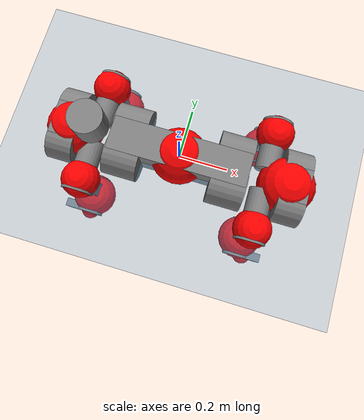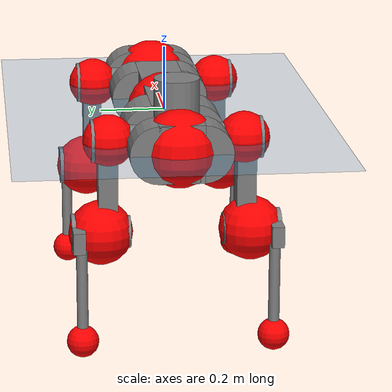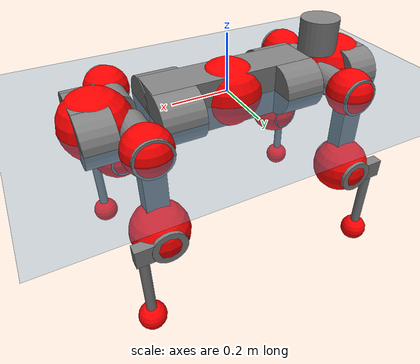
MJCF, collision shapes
<mujoco model="anymal_c">
  <compiler angle="radian" assetdir="assets" balanceinertia="true" inertiafromgeom="false"/>

  <option timestep="0.005" density="1.2" viscosity="2e-05"/>

  <size nkey="1"/>

  <visual>
    <quality shadowsize="8192"/>
    <map shadowclip="0.5"/>
  </visual>

  <default>
    <default class="/">
      <material specular="0" shininess="0.25"/>
      <geom contype="0" conaffinity="0" group="1" solref="-1000 -80"/>
      <site size="0.01 0.005 0.005" group="5"/>
      <general forcelimited="true" forcerange="-80 80" biastype="affine" gainprm="80" biasprm="0 -80 -2"/>
      <default class="anymal_c">
        <joint armature="0.01" damping="0.01" frictionloss="0.1"/>
        <default class="visual">
          <geom type="mesh" group="2"/>
          <default class="visual_zflip"/>
        </default>
        <default class="collision">
          <geom type="cylinder" group="3"/>
          <default class="foot">
            <geom size="0.03 0 0" type="sphere" condim="6" priority="1" friction="0.8 0.02 0.01" solimp="0.015 1 0.03"/>
          </default>
        </default>
      </default>
      <default class="reward_collision_sphere">
        <geom group="5" rgba="1 0 0 1"/>
      </default>
    </default>
  </default>

  <asset>
    <texture type="skybox" colorspace="auto" name="//unnamed_texture_0" builtin="gradient" rgb1="0.95 0.95 0.95" rgb2="0.95 0.95 0.95" width="100" height="600"/>
    <texture type="2d" colorspace="auto" name="texplane" builtin="checker" rgb1="0.345 0.575 0.748" rgb2="0.345 0.575 0.748" markrgb="1 1 1" width="512" height="512"/>
    <texture type="2d" colorspace="linear" name="base" file="base.png"/>
    <texture type="2d" colorspace="linear" name="top_shell" file="top_shell.png"/>
    <texture type="2d" colorspace="linear" name="bottom_shell" file="bottom_shell.png"/>
    <texture type="2d" colorspace="linear" name="remote" file="remote.png"/>
    <texture type="2d" colorspace="linear" name="hatch" file="hatch.png"/>
    <texture type="2d" colorspace="linear" name="handle" file="handle.png"/>
    <texture type="2d" colorspace="linear" name="face" file="face.png"/>
    <texture type="2d" colorspace="linear" name="battery" file="battery.png"/>
    <texture type="2d" colorspace="linear" name="lidar_cage" file="lidar_cage.png"/>
    <texture type="2d" colorspace="linear" name="depth_camera" file="depth_camera.png"/>
    <texture type="2d" colorspace="linear" name="wide_angle_camera" file="wide_angle_camera.png"/>
    <texture type="2d" colorspace="linear" name="lidar" file="lidar.png"/>
    <texture type="2d" colorspace="linear" name="drive" file="drive.png"/>
    <texture type="2d" colorspace="linear" name="hip_l" file="hip_l.png"/>
    <texture type="2d" colorspace="linear" name="shank_l" file="shank_l.png"/>
    <texture type="2d" colorspace="linear" name="foot" file="foot.png"/>
    <texture type="2d" colorspace="linear" name="thigh" file="thigh.png"/>
    <texture type="2d" colorspace="linear" name="shank_r" file="shank_r.png"/>
    <texture type="2d" colorspace="linear" name="hip_r" file="hip_r.png"/>
    <material name="MatPlane" class="/" texture="texplane" texuniform="true" texrepeat="2 2" specular="0.9" shininess="0.5"/>
    <material name="black_plastic" class="/" rgba="0.007 0.007 0.007 1"/>
    <material name="green" class="/" rgba="0.052 0.178 0.033 1"/>
    <material name="red" class="/" rgba="0.178 0.006 0.005 1"/>
    <material name="yellow" class="/" rgba="0.178 0.119 0.006 1"/>
    <material name="lwl" class="/" rgba="0.8 0.8 0.8 1"/>
    <material name="base" class="/" texture="base"/>
    <material name="top_shell" class="/" texture="top_shell"/>
    <material name="bottom_shell" class="/" texture="bottom_shell"/>
    <material name="hip_l" class="/" texture="hip_l"/>
    <material name="thigh" class="/" texture="thigh"/>
    <material name="shank_l" class="/" texture="shank_l"/>
    <material name="foot" class="/" texture="foot"/>
    <material name="hip_r" class="/" texture="hip_r"/>
    <material name="shank" class="/" texture="shank_r"/>
    <material name="hatch" class="/" texture="hatch"/>
    <material name="remote" class="/" texture="remote"/>
    <material name="handle" class="/" texture="handle"/>
    <material name="face" class="/" texture="face"/>
    <material name="depth_camera" class="/" texture="depth_camera"/>
    <material name="wide_angle_camera" class="/" texture="wide_angle_camera"/>
    <material name="battery" class="/" texture="battery"/>
    <material name="lidar_cage" class="/" texture="lidar_cage"/>
    <material name="lidar" class="/" texture="lidar"/>
    <material name="drive" class="/" texture="drive"/>
    <mesh name="base_0" class="/" file="base_0.obj"/>
    <mesh name="base_1" class="/" file="base_1.obj"/>
    <mesh name="base_2" class="/" file="base_2.obj"/>
    <mesh name="base_3" class="/" file="base_3.obj"/>
    <mesh name="base_4" class="/" file="base_4.obj"/>
    <mesh name="base_5" class="/" file="base_5.obj"/>
    <mesh name="top_shell" class="/" file="top_shell.obj"/>
    <mesh name="bottom_shell" class="/" file="bottom_shell.obj"/>
    <mesh name="remote" class="/" file="remote.obj"/>
    <mesh name="handle" class="/" file="handle.obj"/>
    <mesh name="face" class="/" file="face.obj"/>
    <mesh name="wide_angle_camera" class="/" file="wide_angle_camera.obj"/>
    <mesh name="depth_camera" class="/" file="depth_camera.obj"/>
    <mesh name="battery" class="/" file="battery.obj"/>
    <mesh name="lidar_cage" class="/" file="lidar_cage.obj"/>
    <mesh name="lidar" class="/" file="lidar.obj"/>
    <mesh name="drive" class="/" file="drive.obj"/>
    <mesh name="hip_l" class="/" file="hip_l.obj"/>
    <mesh name="thigh" class="/" file="thigh.obj"/>
    <mesh name="shank_l" class="/" file="shank_l.obj"/>
    <mesh name="foot" class="/" file="foot.obj"/>
    <mesh name="hip_r" class="/" file="hip_r.obj"/>
    <mesh name="hatch" class="/" file="hatch.obj"/>
    <mesh name="shank_r" class="/" file="shank_r.obj"/>
  </asset>

  <worldbody>
    <geom name="floor" class="/" size="100 100 0.125" type="plane" group="0" material="MatPlane"/>
    <light name="toplight_shadow" class="/" pos="0 0 5" dir="0.0990148 0.0990148 -0.990148" type="directional" ambient="0.04 0.04 0.04" diffuse="0.55 0.55 0.55" specular="0.12 0.12 0.12"/>
    <light name="toplight_fill" class="/" pos="0 0 5" dir="0.0990148 0.0990148 -0.990148" type="directional" castshadow="false" ambient="0.04 0.04 0.04" diffuse="0.3 0.3 0.3" specular="0.08 0.08 0.08"/>
    <body name="trunk" childclass="anymal_c" pos="7.13272e-05 0.000316504 -7.88485e-05" quat="1 6.51026e-06 -2.06191e-05 8.41074e-06">
      <inertial pos="0.00252435 -0.000112243 0.0486197" quat="0.494963 0.498244 0.504828 0.501909" mass="17.6148" diaginertia="0.598007 0.431032 0.213399"/>
      <joint name="//unnamed_joint_0" type="free" armature="0" damping="0" frictionloss="0"/>
      <geom name="//unnamed_geom_1" class="visual" material="green" mesh="base_0"/>
      <geom name="//unnamed_geom_2" class="visual" material="yellow" mesh="base_1"/>
      <geom name="//unnamed_geom_3" class="visual" material="red" mesh="base_2"/>
      <geom name="//unnamed_geom_4" class="visual" material="black_plastic" mesh="base_3"/>
      <geom name="//unnamed_geom_5" class="visual" material="lwl" mesh="base_4"/>
      <geom name="//unnamed_geom_6" class="visual" material="base" mesh="base_5"/>
      <geom name="trunk_1" class="collision" size="0.281509 0.0679505 0.0873649" type="box"/>
      <geom name="trunk_2" class="collision" size="0.0873649 0.0703773" pos="0.2145 0.0649506 0" quat="0.707107 0 0.707107 0"/>
      <geom name="trunk_3" class="collision" size="0.0873649 0.0703773" pos="-0.2145 0.0649506 0" quat="0.707107 0 0.707107 0"/>
      <geom name="trunk_4" class="collision" size="0.0873649 0.0703773" pos="0.2145 -0.0649506 0" quat="0.707107 0 0.707107 0"/>
      <geom name="trunk_5" class="collision" size="0.0873649 0.0703773" pos="-0.2145 -0.0649506 0" quat="0.707107 0 0.707107 0"/>
      <geom name="//unnamed_geom_12" class="visual" material="top_shell" mesh="top_shell"/>
      <geom name="//unnamed_geom_13" class="visual" material="bottom_shell" mesh="bottom_shell"/>
      <geom name="//unnamed_geom_14" class="visual" material="remote" mesh="remote"/>
      <geom name="//unnamed_geom_15" class="visual" material="handle" mesh="handle"/>
      <geom name="//unnamed_geom_16" class="visual" pos="0.408782 0 0" quat="1 0 0 0" material="face" mesh="face"/>
      <geom name="trunk_6" class="collision" size="0.0533897 0.0679505 0.0873649" pos="0.463023 0 0" type="box"/>
      <geom name="//unnamed_geom_18" class="collision" size="0.0873649 0.0533897" pos="0.463023 0.0649506 0" quat="0.707107 0 0.707107 0"/>
      <geom name="//unnamed_geom_19" class="collision" size="0.0873649 0.0533897" pos="0.463023 -0.0649506 0" quat="0.707107 0 0.707107 0"/>
      <geom name="//unnamed_geom_20" class="visual" pos="0.455282 0 -0.0292346" quat="0.965926 0 0.258819 0" material="depth_camera" mesh="depth_camera"/>
      <geom name="//unnamed_geom_21" class="visual" pos="0.505923 0 0.0149414" material="wide_angle_camera" mesh="wide_angle_camera"/>
      <geom name="//unnamed_geom_22" class="visual_zflip" pos="-0.408782 0 0" quat="0 0 0 1" material="face" mesh="face"/>
      <geom name="trunk_7" class="collision" size="0.0533897 0.0679505 0.0873649" pos="-0.463023 0 0" quat="0 0 0 1" type="box"/>
      <geom name="//unnamed_geom_24" class="collision" size="0.0873649 0.0533897" pos="-0.463023 -0.0649506 0" quat="0 -0.707107 0 0.707107"/>
      <geom name="//unnamed_geom_25" class="collision" size="0.0873649 0.0533897" pos="-0.463023 0.0649506 0" quat="0 -0.707107 0 0.707107"/>
      <geom name="//unnamed_geom_26" class="visual" pos="-0.455282 0 -0.0292346" quat="0 -0.258819 0 0.965926" material="depth_camera" mesh="depth_camera"/>
      <geom name="//unnamed_geom_27" class="visual_zflip" pos="-0.505923 0 0.0149414" quat="0 0 0 1" material="wide_angle_camera" mesh="wide_angle_camera"/>
      <geom name="//unnamed_geom_28" class="visual" material="battery" mesh="battery"/>
      <geom name="//unnamed_geom_29" class="visual" pos="0 0.0701796 0.0289042" quat="0.683013 -0.183013 0.183013 0.683013" material="depth_camera" mesh="depth_camera"/>
      <geom name="//unnamed_geom_30" class="visual" pos="0 -0.0701796 0.0289042" quat="0.683013 0.183013 0.183013 -0.683013" material="depth_camera" mesh="depth_camera"/>
      <geom name="//unnamed_geom_31" class="visual" pos="-0.358979 0 0.0733598" quat="1 0 0 0" material="lidar_cage" mesh="lidar_cage"/>
      <geom name="trunk_8" class="collision" size="0.0679505 0.0582433" pos="-0.358979 0 0.133245"/>
      <geom name="//unnamed_geom_33" class="visual" pos="-0.358979 -2.29199e-05 0.141929" quat="0.707107 0 0 -0.707107" material="lidar" mesh="lidar"/>
      <geom name="//unnamed_geom_34" class="visual" pos="0.295763 0.096523 -1.21141e-09" quat="0.258819 0.965926 0 0" material="drive" mesh="drive"/>
      <geom name="//unnamed_geom_35" class="visual" pos="0.295763 -0.096523 1.21141e-09" quat="0.258819 -0.965926 0 0" material="drive" mesh="drive"/>
      <geom name="//unnamed_geom_36" class="visual" pos="-0.295763 0.096523 1.21141e-09" quat="0 0 0.965926 -0.258819" material="drive" mesh="drive"/>
      <geom name="//unnamed_geom_37" class="visual" pos="-0.295763 -0.096523 -1.21141e-09" quat="0 0 -0.965926 -0.258819" material="drive" mesh="drive"/>
      <geom name="//unnamed_geom_38" class="visual" pos="0.1144 0 0.0728607" quat="1 0 0 0" material="hatch" mesh="hatch"/>
      <geom name="//unnamed_geom_39" class="reward_collision_sphere" size="0.116487"/>
      <geom name="//unnamed_geom_40" class="reward_collision_sphere" size="0.116487" pos="0.443792 0 0"/>
      <geom name="//unnamed_geom_41" class="reward_collision_sphere" size="0.116487" pos="-0.443792 0 0"/>
      <site name="imu" pos="0.243183 0.00302908 0.047804" size="0.00970721"/>
      <camera name="track" pos="0 -1.85573 0" quat="0.707107 0.707107 0 0" mode="trackcom"/>
      <camera name="ego_camera" pos="0.443792 0 -0.0399237" quat="-0.5 -0.5 0.5 0.5"/>
      <body name="LF_HIP" pos="0.295388 0.098291 0.000333502" quat="0.258803 0.96593 -3.3372e-05 5.37768e-05">
        <inertial pos="0.0555612 -0.0138033 -0.00901569" quat="-0.127719 0.709871 -0.134956 0.679381" mass="2.55673" diaginertia="0.00545955 0.00341907 0.00328082"/>
        <joint name="LF_HAA" pos="0 0 0" axis="0.999998 -0.00122902 0.00162427" range="-0.689827 0.471845" armature="0.00990465" damping="0.00867162" frictionloss="0.0933479"/>
        <geom name="//unnamed_geom_42" class="visual" pos="0 -7.12619e-05 1.17047e-05" quat="0.258819 -0.965926 0 0" material="hip_l" mesh="hip_l"/>
        <geom name="//unnamed_geom_43" class="visual" pos="0.0590737 -0.0708372 -0.0414173" quat="0.183013 -0.683013 0.683013 0.183013" material="drive" mesh="drive"/>
        <geom name="//unnamed_geom_44" class="collision" size="0.0485361 0.0679505" pos="0.0590737 -0.0110971 -0.00689183" quat="-0.353553 -0.612372 0.612372 -0.353553"/>
        <body name="LF_THIGH" pos="0.0592648 -0.0665724 -0.041614" quat="0.182927 -0.682774 0.683249 0.18311">
          <inertial pos="0.0300184 -0.000812122 -0.244699" quat="0.993036 -0.00565301 -0.081184 0.0851865" mass="2.80836" diaginertia="0.0281124 0.020501 0.00413067"/>
          <joint name="LF_HFE" pos="0 0 0" axis="1 0.000293209 0.000829458" stiffness="0.00157795" range="-3.15884 3.15212" armature="0.0096725" damping="0.010965" frictionloss="0.0947926"/>
          <geom name="//unnamed_geom_45" class="visual" pos="0.00116072 1.82902e-06 0" quat="0.707107 0 0 -0.707107" material="thigh" mesh="thigh"/>
          <geom name="//unnamed_geom_46" class="collision" size="0.0630969 0.0388288" pos="0.0394482 0 0" quat="0.5 0.5 -0.5 -0.5"/>
          <geom name="//unnamed_geom_47" class="collision" size="0.036402 0.0291216 0.137176" pos="0.0295862 0 -0.141044" quat="0.707107 0 0 -0.707107" type="box"/>
          <geom name="//unnamed_geom_48" class="visual" pos="0.0989164 0 -0.284456" quat="1 0 0 0" material="drive" mesh="drive"/>
          <geom name="//unnamed_geom_49" class="collision" size="0.0485361 0.0679505" pos="0.029882 0 -0.284456" quat="0.707107 0 0.707107 0"/>
          <geom name="//unnamed_geom_50" class="reward_collision_sphere" size="0.0776577" pos="0.0246551 0 0"/>
          <body name="LF_SHANK" pos="0.0992677 -0.00117362 -0.284188" quat="1 0.000315096 0.000277593 -3.1934e-05">
            <inertial pos="0.00454502 -0.0568141 -0.0817082" quat="0.992903 -0.11624 -0.000813041 -0.0251164" mass="0.536353" diaginertia="0.00952699 0.0064241 0.00109427"/>
            <joint name="LF_KFE" pos="0 0 0" axis="0.999999 0.00147952 -0.000119056" range="-3.16276 3.1431" armature="0.010179" damping="0.00918077" frictionloss="0.0969089"/>
            <geom name="//unnamed_geom_51" class="visual" pos="0.000378486 0.00201811 0" quat="0.707107 0 0 -0.707107" material="shank_l" mesh="shank_l"/>
            <geom name="LF_kfe_act" class="collision" size="0.0582433 0.0194144" pos="0.0197241 0 0" quat="0.5 0.5 -0.5 -0.5"/>
            <geom name="//unnamed_geom_53" class="collision" size="0.0558155 0.0327618 0.0184437" pos="0.0197241 -0.0533514 0" quat="0.5 0.5 -0.5 -0.5" type="box"/>
            <geom name="//unnamed_geom_54" class="visual" pos="0.0128699 -0.0809554 -0.337325" quat="0.382683 0 0 -0.92388" material="foot" mesh="foot"/>
            <geom name="LF_calf" class="collision" size="0.0169876 0.137116" pos="0.01287 -0.0816058 -0.168663" quat="0.707107 0 0 -0.707107"/>
            <geom name="LF_foot" class="foot" size="0.0298491" pos="0.01287 -0.0816058 -0.314868" quat="0.707107 0 0 -0.707107"/>
            <geom name="//unnamed_geom_57" class="reward_collision_sphere" size="0.0970721" pos="-0.0493103 0 0"/>
            <geom name="//unnamed_geom_58" class="reward_collision_sphere" size="0.0485361" pos="0.01287 -0.0816058 -0.314868"/>
            <site name="LF_foot" class="foot" pos="0.01287 -0.0816058 -0.314868" quat="0.707107 0 0 -0.707107" size="0.00970721"/>
          </body>
        </body>
      </body>
      <body name="RF_HIP" pos="0.295904 -0.0963026 0.00139936" quat="0.258759 -0.965942 1.88333e-05 -0.000134065">
        <inertial pos="0.0563508 0.0149284 -0.00796106" quat="0.134278 0.679905 0.128538 0.70935" mass="2.52833" diaginertia="0.00545832 0.00331437 0.00324493"/>
        <joint name="RF_HAA" pos="0 0 0" axis="0.999998 0.00190013 -0.000915217" range="-0.489718 0.720206" armature="0.00969306" damping="0.00952194" frictionloss="0.0954945"/>
        <geom name="//unnamed_geom_59" class="visual" pos="0 7.12613e-05 1.17047e-05" quat="0.258819 0.965926 0 0" material="hip_r" mesh="hip_r"/>
        <geom name="//unnamed_geom_60" class="visual" pos="0.0590737 0.0708372 -0.0414173" quat="0.183013 0.683013 0.683013 -0.183013" material="drive" mesh="drive"/>
        <geom name="//unnamed_geom_61" class="collision" size="0.0485361 0.0679505" pos="0.0590737 0.0110971 -0.00689183" quat="-0.353553 0.612372 0.612372 0.353553"/>
        <body name="RF_THIGH" pos="0.0601776 0.0688692 -0.0432923" quat="0.182688 0.683005 0.683006 -0.183393">
          <inertial pos="0.0313458 -0.0013608 -0.244692" quat="0.992358 -0.00303533 -0.0845322 0.089842" mass="2.78666" diaginertia="0.0281556 0.0205707 0.00417172"/>
          <joint name="RF_HFE" pos="0 0 0" axis="0.999998 0.00116441 0.00168108" stiffness="0.00325587" range="-3.15915 3.13748" armature="0.0097654" damping="0.0111942" frictionloss="0.0972327"/>
          <geom name="//unnamed_geom_62" class="visual" pos="0.00116072 1.82902e-06 0" quat="0.707107 0 0 -0.707107" material="thigh" mesh="thigh"/>
          <geom name="//unnamed_geom_63" class="collision" size="0.0630969 0.0388288" pos="0.0394482 0 0" quat="0.5 0.5 0.5 0.5"/>
          <geom name="//unnamed_geom_64" class="collision" size="0.036402 0.0291216 0.137176" pos="0.0295862 0 -0.141044" quat="0.707107 0 0 0.707107" type="box"/>
          <geom name="//unnamed_geom_65" class="visual" pos="0.0989164 0 -0.284456" quat="1 0 0 0" material="drive" mesh="drive"/>
          <geom name="//unnamed_geom_66" class="collision" size="0.0485361 0.0679505" pos="0.029882 0 -0.284456" quat="0.707107 0 0.707107 0"/>
          <geom name="//unnamed_geom_67" class="reward_collision_sphere" size="0.0776577" pos="0.0246551 0 0"/>
          <body name="RF_SHANK" pos="0.0979107 0.000712691 -0.283613" quat="1 -1.31409e-05 0.000117621 -2.60544e-05">
            <inertial pos="0.00495529 0.0567031 -0.081008" quat="0.99254 0.118396 -0.00168336 0.0290665" mass="0.537759" diaginertia="0.00953773 0.00634736 0.00110748"/>
            <joint name="RF_KFE" pos="0 0 0" axis="0.999969 0.00344178 -0.00715035" range="-3.12613 3.13903" armature="0.0100743" damping="0.0116805" frictionloss="0.096269"/>
            <geom name="//unnamed_geom_68" class="visual" pos="0.000378484 -0.0020181 0" quat="0.707107 0 0 0.707107" material="shank" mesh="shank_r"/>
            <geom name="RF_kfe_act" class="collision" size="0.0582433 0.0194144" pos="0.0197241 0 0" quat="0.5 0.5 0.5 0.5"/>
            <geom name="//unnamed_geom_70" class="collision" size="0.0558155 0.0327618 0.0184437" pos="0.0197241 0.0533514 0" quat="0.5 0.5 0.5 0.5" type="box"/>
            <geom name="//unnamed_geom_71" class="visual" pos="0.0128701 0.0809554 -0.337325" quat="0.382683 0 0 0.92388" material="foot" mesh="foot"/>
            <geom name="RF_calf" class="collision" size="0.0169876 0.137116" pos="0.01287 0.0816058 -0.168663" quat="0.707107 0 0 0.707107"/>
            <geom name="RF_foot" class="foot" size="0.0305651" pos="0.01287 0.0816058 -0.314868" quat="0.707107 0 0 0.707107"/>
            <geom name="//unnamed_geom_74" class="reward_collision_sphere" size="0.0970721" pos="-0.0493103 0 0"/>
            <geom name="//unnamed_geom_75" class="reward_collision_sphere" size="0.0485361" pos="0.01287 0.0816058 -0.314868"/>
            <site name="RF_foot" class="foot" pos="0.01287 0.0816058 -0.314868" quat="0.707107 0 0 0.707107" size="0.00970721"/>
          </body>
        </body>
      </body>
      <body name="LH_HIP" pos="-0.294651 0.0974069 -0.000477093" quat="-0.000194287 6.66346e-05 0.965881 -0.258987">
        <inertial pos="0.0562189 0.0139721 -0.00926154" quat="0.135173 0.679222 0.127839 0.70996" mass="2.52299" diaginertia="0.00540987 0.00335311 0.00322854"/>
        <joint name="LH_HAA" pos="0 0 0" axis="1 -0.000515468 0.000548456" range="-0.484259 0.734042" armature="0.00969275" damping="0.00759202" frictionloss="0.0995955"/>
        <geom name="//unnamed_geom_76" class="visual" pos="0 7.12613e-05 1.17047e-05" quat="-0.258819 -0.965926 0 0" material="hip_r" mesh="hip_r"/>
        <geom name="//unnamed_geom_77" class="visual" pos="0.0590737 0.0708372 -0.0414173" quat="0.183013 0.683013 0.683013 -0.183013" material="drive" mesh="drive"/>
        <geom name="//unnamed_geom_78" class="collision" size="0.0485361 0.0679505" pos="0.0590737 0.0110971 -0.00689183" quat="-0.353553 0.612372 0.612372 0.353553"/>
        <body name="LH_THIGH" pos="0.0591856 0.0667317 -0.0434638" quat="0.183054 0.68286 0.683207 -0.182814">
          <inertial pos="0.0305852 -0.000318997 -0.245948" quat="0.992678 -0.00322304 -0.0843192 0.0864298" mass="2.84115" diaginertia="0.0279794 0.0202637 0.00412452"/>
          <joint name="LH_HFE" pos="0 0 0" axis="0.999999 -0.000461696 -0.00109153" stiffness="0.000183182" range="-3.13749 3.1218" armature="0.00993729" damping="0.00672166" frictionloss="0.0971957"/>
          <geom name="//unnamed_geom_79" class="visual" pos="0.00116072 1.82902e-06 0" quat="0.707107 0 0 -0.707107" material="thigh" mesh="thigh"/>
          <geom name="//unnamed_geom_80" class="collision" size="0.0630969 0.0388288" pos="0.0394482 0 0" quat="0.5 0.5 -0.5 -0.5"/>
          <geom name="//unnamed_geom_81" class="collision" size="0.036402 0.0291216 0.137176" pos="0.0295862 0 -0.141044" quat="0.707107 0 0 -0.707107" type="box"/>
          <geom name="//unnamed_geom_82" class="visual" pos="0.0989164 0 -0.284456" quat="1 0 0 0" material="drive" mesh="drive"/>
          <geom name="//unnamed_geom_83" class="collision" size="0.0485361 0.0679505" pos="0.029882 0 -0.284456" quat="0.707107 0 0.707107 0"/>
          <geom name="//unnamed_geom_84" class="reward_collision_sphere" size="0.0776577" pos="0.0246551 0 0"/>
          <body name="LH_SHANK" pos="0.0998712 -0.00223706 -0.285273" quat="1 0.000110368 0.000197011 0.000119797">
            <inertial pos="0.00547447 0.0566719 -0.0809909" quat="0.99302 0.115139 -0.00245714 0.0254695" mass="0.526086" diaginertia="0.00940541 0.0063058 0.00109742"/>
            <joint name="LH_KFE" pos="0 0 0" axis="1 0.000762829 0.000188276" range="-3.1218 3.14764" armature="0.00963495" damping="0.0136766" frictionloss="0.0963905"/>
            <geom name="//unnamed_geom_85" class="visual" pos="0.000378484 -0.0020181 0" quat="-0.707107 0 0 -0.707107" material="shank" mesh="shank_r"/>
            <geom name="LH_kfe_act" class="collision" size="0.0582433 0.0194144" pos="0.0197241 0 0" quat="0.5 0.5 -0.5 -0.5"/>
            <geom name="//unnamed_geom_87" class="collision" size="0.0558155 0.0327618 0.0184437" pos="0.0197241 0.0533514 0" quat="0.5 0.5 -0.5 -0.5" type="box"/>
            <geom name="//unnamed_geom_88" class="visual" pos="0.0128701 0.0809554 -0.337325" quat="-0.382683 0 0 -0.92388" material="foot" mesh="foot"/>
            <geom name="LH_calf" class="collision" size="0.0169876 0.137116" pos="0.01287 0.0816058 -0.168663" quat="0.707107 0 0 -0.707107"/>
            <geom name="LH_foot" class="foot" size="0.029612" pos="0.01287 0.0816058 -0.314868" quat="0.707107 0 0 -0.707107"/>
            <geom name="//unnamed_geom_91" class="reward_collision_sphere" size="0.0970721" pos="-0.0493103 0 0"/>
            <geom name="//unnamed_geom_92" class="reward_collision_sphere" size="0.0485361" pos="0.01287 0.0816058 -0.314868"/>
            <site name="LH_foot" class="foot" pos="0.01287 0.0816058 -0.314868" quat="0.707107 0 0 -0.707107" size="0.00970721"/>
          </body>
        </body>
      </body>
      <body name="RH_HIP" pos="-0.295382 -0.0977076 0.000728936" quat="-1.84373e-05 5.22889e-05 -0.965951 -0.258723">
        <inertial pos="0.0560979 -0.0141665 -0.00770547" quat="-0.12834 0.70936 -0.133891 0.680008" mass="2.50424" diaginertia="0.00537126 0.0033232 0.00324898"/>
        <joint name="RH_HAA" pos="0 0 0" axis="1 -0.000150234 -0.00016467" range="-0.730589 0.480001" armature="0.00972351" damping="0.00851779" frictionloss="0.0975469"/>
        <geom name="//unnamed_geom_93" class="visual" pos="0 -7.12619e-05 1.17047e-05" quat="-0.258819 0.965926 0 0" material="hip_l" mesh="hip_l"/>
        <geom name="//unnamed_geom_94" class="visual" pos="0.0590737 -0.0708372 -0.0414173" quat="-0.183013 0.683013 -0.683013 -0.183013" material="drive" mesh="drive"/>
        <geom name="//unnamed_geom_95" class="collision" size="0.0485361 0.0679505" pos="0.0590737 -0.0110971 -0.00689183" quat="0.353553 0.612372 -0.612372 0.353553"/>
        <body name="RH_THIGH" pos="0.0585361 -0.0678127 -0.0425271" quat="-0.183226 0.682748 -0.683212 -0.183043">
          <inertial pos="0.0305591 -0.000702499 -0.245931" quat="0.993283 -0.0046115 -0.0785908 0.0848037" mass="2.83017" diaginertia="0.0284979 0.0207418 0.004194"/>
          <joint name="RH_HFE" pos="0 0 0" axis="0.999995 -0.0021688 -0.00208478" stiffness="0.000696407" range="-3.13028 3.12443" armature="0.00988215" damping="0.00600478" frictionloss="0.0996035"/>
          <geom name="//unnamed_geom_96" class="visual" pos="0.00116072 1.82902e-06 0" quat="0.707107 0 0 -0.707107" material="thigh" mesh="thigh"/>
          <geom name="//unnamed_geom_97" class="collision" size="0.0630969 0.0388288" pos="0.0394482 0 0" quat="0.5 0.5 0.5 0.5"/>
          <geom name="//unnamed_geom_98" class="collision" size="0.036402 0.0291216 0.137176" pos="0.0295862 0 -0.141044" quat="0.707107 0 0 0.707107" type="box"/>
          <geom name="//unnamed_geom_99" class="visual" pos="0.0989164 0 -0.284456" quat="1 0 0 0" material="drive" mesh="drive"/>
          <geom name="//unnamed_geom_100" class="collision" size="0.0485361 0.0679505" pos="0.029882 0 -0.284456" quat="0.707107 0 0.707107 0"/>
          <geom name="//unnamed_geom_101" class="reward_collision_sphere" size="0.0776577" pos="0.0246551 0 0"/>
          <body name="RH_SHANK" pos="0.0967241 0.000812003 -0.283966" quat="1 -0.000226903 -0.000200472 0.000419226">
            <inertial pos="0.00695457 -0.0567494 -0.0805825" quat="0.993087 -0.114728 0.00115181 -0.0247679" mass="0.541588" diaginertia="0.00957956 0.00636829 0.00111841"/>
            <joint name="RH_KFE" pos="0 0 0" axis="0.999999 5.54313e-05 0.00168192" range="-3.12177 3.15023" armature="0.00942853" damping="0.00846018" frictionloss="0.0981245"/>
            <geom name="//unnamed_geom_102" class="visual" pos="0.000378486 0.00201811 0" quat="0.707107 0 0 -0.707107" material="shank_l" mesh="shank_l"/>
            <geom name="RH_kfe_act" class="collision" size="0.0582433 0.0194144" pos="0.0197241 0 0" quat="0.5 0.5 0.5 0.5"/>
            <geom name="//unnamed_geom_104" class="collision" size="0.0558155 0.0327618 0.0184437" pos="0.0197241 -0.0533514 0" quat="0.5 0.5 0.5 0.5" type="box"/>
            <geom name="//unnamed_geom_105" class="visual" pos="0.0128699 -0.0809554 -0.337325" quat="0.382683 0 0 -0.92388" material="foot" mesh="foot"/>
            <geom name="RH_calf" class="collision" size="0.0169876 0.137116" pos="0.01287 -0.0816058 -0.168663" quat="0.707107 0 0 0.707107"/>
            <geom name="RH_foot" class="foot" size="0.0289982" pos="0.01287 -0.0816058 -0.314868" quat="0.707107 0 0 0.707107"/>
            <geom name="//unnamed_geom_108" class="reward_collision_sphere" size="0.0970721" pos="-0.0493103 0 0"/>
            <geom name="//unnamed_geom_109" class="reward_collision_sphere" size="0.0485361" pos="0.01287 -0.0816058 -0.314868"/>
            <site name="RH_foot" class="foot" pos="0.01287 -0.0816058 -0.314868" quat="0.707107 0 0 0.707107" size="0.00970721"/>
          </body>
        </body>
      </body>
    </body>
  </worldbody>

  <contact>
    <pair class="/" geom1="floor" geom2="LF_foot" name="//unnamed_contact_0"/>
    <pair class="/" geom1="floor" geom2="RF_foot" name="//unnamed_contact_1"/>
    <pair class="/" geom1="floor" geom2="LH_foot" name="//unnamed_contact_2"/>
    <pair class="/" geom1="floor" geom2="RH_foot" name="//unnamed_contact_3"/>
  </contact>

  <actuator>
    <general name="LF_HAA" class="/" joint="LF_HAA" forcerange="-82.889 82.889" gainprm="78.6848" biasprm="0 -78.6848 -1.87056"/>
    <general name="LF_HFE" class="/" joint="LF_HFE" forcerange="-80.4497 80.4497" gainprm="78.6848" biasprm="0 -78.6848 -1.87056"/>
    <general name="LF_KFE" class="/" joint="LF_KFE" forcerange="-76.4121 76.4121" gainprm="78.6848" biasprm="0 -78.6848 -1.87056"/>
    <general name="RF_HAA" class="/" joint="RF_HAA" forcerange="-80.8458 80.8458" gainprm="78.6848" biasprm="0 -78.6848 -1.87056"/>
    <general name="RF_HFE" class="/" joint="RF_HFE" forcerange="-81.9035 81.9035" gainprm="78.6848" biasprm="0 -78.6848 -1.87056"/>
    <general name="RF_KFE" class="/" joint="RF_KFE" forcerange="-75.8002 75.8002" gainprm="78.6848" biasprm="0 -78.6848 -1.87056"/>
    <general name="LH_HAA" class="/" joint="LH_HAA" forcerange="-76.7727 76.7727" gainprm="78.6848" biasprm="0 -78.6848 -1.87056"/>
    <general name="LH_HFE" class="/" joint="LH_HFE" forcerange="-79.4362 79.4362" gainprm="78.6848" biasprm="0 -78.6848 -1.87056"/>
    <general name="LH_KFE" class="/" joint="LH_KFE" forcerange="-80.8566 80.8566" gainprm="78.6848" biasprm="0 -78.6848 -1.87056"/>
    <general name="RH_HAA" class="/" joint="RH_HAA" forcerange="-75.2995 75.2995" gainprm="78.6848" biasprm="0 -78.6848 -1.87056"/>
    <general name="RH_HFE" class="/" joint="RH_HFE" forcerange="-77.2014 77.2014" gainprm="78.6848" biasprm="0 -78.6848 -1.87056"/>
    <general name="RH_KFE" class="/" joint="RH_KFE" forcerange="-77.8387 77.8387" gainprm="78.6848" biasprm="0 -78.6848 -1.87056"/>
  </actuator>

  <sensor>
    <gyro site="imu" name="imu_angular_velocity"/>
    <velocimeter site="imu" name="imu_linear_velocity"/>
    <framelinvel objtype="site" objname="LF_foot" name="LF_foot_global_linear_velocity"/>
    <framelinvel objtype="site" objname="RF_foot" name="RF_foot_global_linear_velocity"/>
    <framelinvel objtype="site" objname="LH_foot" name="LH_foot_global_linear_velocity"/>
    <framelinvel objtype="site" objname="RH_foot" name="RH_foot_global_linear_velocity"/>
  </sensor>

  <keyframe>
    <key name="home" qpos="0 0 0.55 1 0 0 0 0 0.4 -0.8 0 -0.4 0.8 0 -0.4 0.8 0 0.4 -0.8"/>
  </keyframe>
</mujoco>
